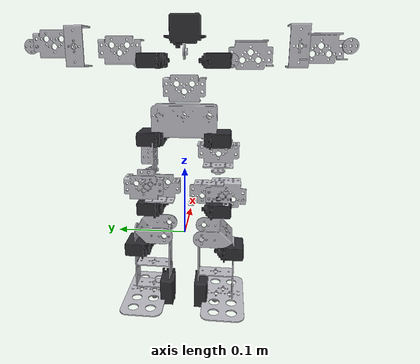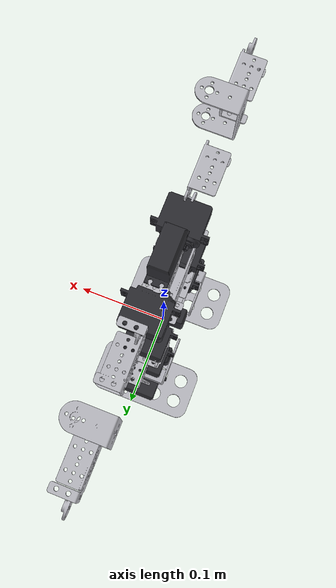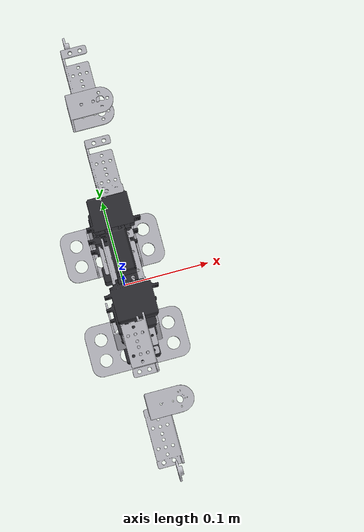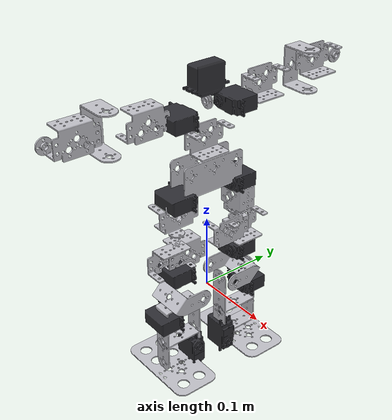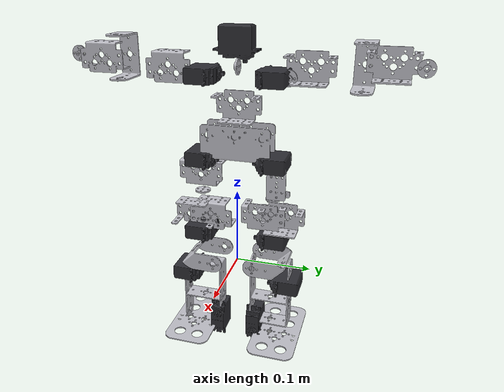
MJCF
<?xml version="1.0" ?>
<!-- TwoLeg v6 - accurate 15-DOF per user spec:
     head 1 + arm+hand 2x3 (shoulder_pitch, elbow, hand) + leg 2x4 (hip_yaw, hip_pitch, knee, ankle) -->
<mujoco model="twoleg">
  <compiler angle="radian" meshdir="assets" autolimits="true"/>
  <visual>
    <global offwidth="1024" offheight="1024"/>
    <headlight ambient="0.55 0.55 0.55" diffuse="0.6 0.6 0.6" specular="0.2 0.2 0.2"/>
  </visual>
  <default>
    <default class="twoleg">
      <joint damping="0.05" frictionloss="0.02" armature="0.002"/>
      <position kp="20" dampratio="1" forcerange="-3 3" ctrlrange="-1.6 1.6"/>
      <default class="visual"><geom type="mesh" contype="0" conaffinity="0" group="2"/></default>
      <default class="collision"><geom group="3"/></default>
    </default>
  </default>
  <asset>
    <mesh name="foot" file="foot_c.stl" scale="0.001 0.001 0.001"/>
    <mesh name="shortU" file="shortU_c.stl" scale="0.001 0.001 0.001"/>
    <mesh name="longU" file="longU_c.stl" scale="0.001 0.001 0.001"/>
    <mesh name="multi" file="multi_c.stl" scale="0.001 0.001 0.001"/>
    <mesh name="straight" file="straight_c.stl" scale="0.001 0.001 0.001"/>
    <mesh name="L_bracket" file="L_bracket_c.stl" scale="0.001 0.001 0.001"/>
    <mesh name="U_beam" file="U_beam_c.stl" scale="0.001 0.001 0.001"/>
    <mesh name="slantU" file="slantU_c.stl" scale="0.001 0.001 0.001"/>
    <mesh name="servo" file="servo_c.stl" scale="0.001 0.001 0.001"/>
    <mesh name="horn" file="horn_c.stl" scale="0.001 0.001 0.001"/>
    <mesh name="bearing" file="bearing_c.stl" scale="0.001 0.001 0.001"/>
    <material name="bracket" rgba="0.75 0.75 0.78 1"/>
    <material name="dark" rgba="0.18 0.18 0.2 1"/>
  </asset>
  <worldbody>
    <!-- ================= TORSO: U_beam waist + multi column + head ================= -->
    <body name="torso" pos="0 0 0.165" childclass="twoleg">
      <freejoint name="root_joint"/>
      <inertial pos="0 0 0.04" mass="0.40" diaginertia="0.0015 0.0015 0.0015"/>
      <!-- waist U_beam horizontal left-right -->
      <geom type="mesh" mesh="U_beam" material="bracket" class="visual" quat="0 0 0.707107 0.707107"/>
      <!-- central multi column -->
      <geom type="mesh" mesh="multi" material="bracket" class="visual" pos="0 0 0.045" quat="0.5 0.5 0.5 0.5"/>
      <!-- HEAD servo box on top: 1 DOF -->
      <body name="head" pos="0 0 0.10">
        <joint name="head_yaw" type="hinge" axis="0 0 1" range="-1.0 1.0"/>
        <inertial pos="0 0 0.02" mass="0.06" diaginertia="0.00005 0.00005 0.00005"/>
        <geom type="mesh" mesh="servo" material="dark" class="visual" pos="0 0 0.023" quat="0 1 0 0"/>
        <geom type="mesh" mesh="horn" material="bracket" class="visual" pos="0 0 -0.004" quat="0 1 0 0"/>
      </body>

      <!-- ===== LEFT ARM: 3 DOF (shoulder_pitch, elbow, hand) ===== -->
      <geom type="mesh" mesh="servo" material="dark" class="visual" pos="0 0.042 0.085" quat="0.5 0.5 0.5 -0.5"/>
      <body name="left_shoulder" pos="0 0.062 0.085">
        <joint name="left_shoulder_pitch" type="hinge" axis="0 1 0" range="-1.0 1.0"/>
        <joint name="left_shoulder_roll" type="hinge" axis="1 0 0" range="-1.6 1.6"/>
        <inertial pos="0 0.045 0.01" mass="0.06" diaginertia="0.0001 0.0001 0.0001"/>
        <geom type="mesh" mesh="horn" material="bracket" class="visual" quat="0.5 0.5 0.5 -0.5"/>
        <geom type="mesh" mesh="multi" material="bracket" class="visual" pos="0 0.025 0.01" quat="0.5 0.5 0.5 0.5"/>
        <body name="left_elbow" pos="0 0.065 0.018">
          <joint name="left_elbow" type="hinge" axis="1 0 0" range="-1.6 1.6"/>
          <inertial pos="0 0.04 0" mass="0.05" diaginertia="0.0001 0.0001 0.0001"/>
          <geom type="mesh" mesh="shortU" material="bracket" class="visual" quat="0.5 0.5 0.5 -0.5" pos="0 0.02 0"/>
          <geom type="mesh" mesh="multi" material="bracket" class="visual" pos="0 0.05 0" quat="0.5 0.5 0.5 0.5"/>
          <geom type="mesh" mesh="horn" material="bracket" class="visual" pos="0 0.085 0" quat="0.5 0.5 0.5 -0.5"/>
        </body>
      </body>

      <!-- ===== RIGHT ARM (mirror), 3 DOF ===== -->
      <geom type="mesh" mesh="servo" material="dark" class="visual" pos="0 -0.042 0.085" quat="-0.5 0.5 0.5 0.5"/>
      <body name="right_shoulder" pos="0 -0.062 0.085">
        <joint name="right_shoulder_pitch" type="hinge" axis="0 1 0" range="-1.0 1.0"/>
        <joint name="right_shoulder_roll" type="hinge" axis="1 0 0" range="-1.6 1.6"/>
        <inertial pos="0 -0.045 0.01" mass="0.06" diaginertia="0.0001 0.0001 0.0001"/>
        <geom type="mesh" mesh="horn" material="bracket" class="visual" quat="-0.5 0.5 0.5 0.5"/>
        <geom type="mesh" mesh="multi" material="bracket" class="visual" pos="0 -0.025 0.01" quat="-0.5 0.5 0.5 -0.5"/>
        <body name="right_elbow" pos="0 -0.065 0.018">
          <joint name="right_elbow" type="hinge" axis="1 0 0" range="-1.6 1.6"/>
          <inertial pos="0 -0.04 0" mass="0.05" diaginertia="0.0001 0.0001 0.0001"/>
          <geom type="mesh" mesh="shortU" material="bracket" class="visual" quat="-0.5 0.5 0.5 0.5" pos="0 -0.02 0"/>
          <geom type="mesh" mesh="multi" material="bracket" class="visual" pos="0 -0.05 0" quat="-0.5 0.5 0.5 -0.5"/>
          <geom type="mesh" mesh="horn" material="bracket" class="visual" pos="0 -0.085 0" quat="-0.5 0.5 0.5 0.5"/>
        </body>
      </body>

      <!-- ===== LEFT LEG: 4 DOF (hip_yaw, hip_pitch, knee, ankle) ===== -->
      <geom type="mesh" mesh="servo" material="dark" class="visual" pos="0 0.045 -0.02" quat="0.5 0.5 -0.5 0.5"/>
      <body name="left_hip_yaw" pos="0 0.048 -0.028">
        <joint name="left_hip_roll" type="hinge" axis="1 0 0" range="-0.8 0.8"/>
        <inertial pos="0 0 -0.02" mass="0.06" diaginertia="0.0001 0.0001 0.0001"/>
        <geom type="mesh" mesh="multi" material="bracket" class="visual" pos="0 0 -0.015" quat="0.5 -0.5 0.5 0.5"/>
        <!-- thigh: multi plate pair + pitch servo -->
        <body name="left_hip_pitch" pos="0 0 -0.04">
          <joint name="left_hip_pitch" type="hinge" axis="0 1 0" range="-1.3 1.3"/>
          <inertial pos="0 0 -0.035" mass="0.09" diaginertia="0.0002 0.0002 0.0002"/>
          <geom type="mesh" mesh="horn" material="bracket" class="visual" quat="0.5 0.5 0.5 0.5"/>
          <geom type="mesh" mesh="multi" material="bracket" class="visual" pos="0 0.012 -0.03" quat="0.5 0.5 0.5 0.5"/>
          <geom type="mesh" mesh="multi" material="bracket" class="visual" pos="0 -0.012 -0.03" quat="0.5 0.5 -0.5 -0.5"/>
          <geom type="mesh" mesh="servo" material="dark" class="visual" pos="0 0 -0.055" quat="0.5 0.5 -0.5 0.5"/>
          <!-- KNEE: slantU -->
          <body name="left_knee" pos="0 0 -0.066">
            <joint name="left_knee" type="hinge" axis="0 1 0" range="-1.6 0.15"/>
            <inertial pos="0 0 -0.035" mass="0.08" diaginertia="0.0002 0.0002 0.0002"/>
            <geom type="mesh" mesh="slantU" material="bracket" class="visual" pos="0 0 -0.028" quat="0.5 0.5 0.5 0.5"/>
            <geom type="mesh" mesh="servo" material="dark" class="visual" pos="0 0.02 -0.055" quat="0.5 0.5 -0.5 0.5"/>
            <geom type="mesh" mesh="longU" material="bracket" class="visual" pos="0 0 -0.062" quat="0.5 0.5 0.5 0.5"/>
            <!-- ANKLE: shortU + servo lying on foot -->
            <body name="left_ankle" pos="0 0 -0.098">
              <joint name="left_ankle" type="hinge" axis="1 0 0" range="-0.9 0.9"/>
              <inertial pos="0 0 -0.012" mass="0.06" diaginertia="0.0001 0.0001 0.0001"/>
              <geom type="mesh" mesh="shortU" material="bracket" class="visual" pos="0 0 -0.01" quat="0.5 0.5 0.5 0.5"/>
              <geom type="mesh" mesh="servo" material="dark" class="visual" pos="0 -0.022 -0.028" quat="0.5 0.5 0.5 0.5"/>
              <geom type="mesh" mesh="foot" material="bracket" class="visual" pos="0 0.012 -0.04"/>
              <geom type="box" size="0.062 0.032 0.003" pos="0 0.012 -0.043" rgba="0.2 0.2 0.2 1" group="3" name="left_foot_col"/>
              <site name="left_foot" pos="0 0 -0.045"/>
            </body>
          </body>
        </body>
      </body>

      <!-- ===== RIGHT LEG (mirror), 4 DOF ===== -->
      <geom type="mesh" mesh="servo" material="dark" class="visual" pos="0 -0.045 -0.02" quat="-0.5 0.5 -0.5 -0.5"/>
      <body name="right_hip_yaw" pos="0 -0.048 -0.028">
        <joint name="right_hip_roll" type="hinge" axis="1 0 0" range="-0.8 0.8"/>
        <inertial pos="0 0 -0.02" mass="0.06" diaginertia="0.0001 0.0001 0.0001"/>
        <geom type="mesh" mesh="multi" material="bracket" class="visual" pos="0 0 -0.015" quat="0.5 0.5 -0.5 -0.5"/>
        <body name="right_hip_pitch" pos="0 0 -0.04">
          <joint name="right_hip_pitch" type="hinge" axis="0 1 0" range="-1.3 1.3"/>
          <inertial pos="0 0 -0.035" mass="0.09" diaginertia="0.0002 0.0002 0.0002"/>
          <geom type="mesh" mesh="horn" material="bracket" class="visual" quat="0.5 -0.5 0.5 -0.5"/>
          <geom type="mesh" mesh="multi" material="bracket" class="visual" pos="0 -0.012 -0.03" quat="0.5 -0.5 0.5 -0.5"/>
          <geom type="mesh" mesh="multi" material="bracket" class="visual" pos="0 0.012 -0.03" quat="0.5 -0.5 -0.5 0.5"/>
          <geom type="mesh" mesh="servo" material="dark" class="visual" pos="0 0 -0.055" quat="0.5 -0.5 -0.5 -0.5"/>
          <body name="right_knee" pos="0 0 -0.066">
            <joint name="right_knee" type="hinge" axis="0 1 0" range="-1.6 0.15"/>
            <inertial pos="0 0 -0.035" mass="0.08" diaginertia="0.0002 0.0002 0.0002"/>
            <geom type="mesh" mesh="slantU" material="bracket" class="visual" pos="0 0 -0.028" quat="0.5 -0.5 0.5 -0.5"/>
            <geom type="mesh" mesh="servo" material="dark" class="visual" pos="0 -0.02 -0.055" quat="0.5 -0.5 -0.5 -0.5"/>
            <geom type="mesh" mesh="longU" material="bracket" class="visual" pos="0 0 -0.062" quat="0.5 -0.5 0.5 -0.5"/>
            <body name="right_ankle" pos="0 0 -0.098">
              <joint name="right_ankle" type="hinge" axis="1 0 0" range="-0.9 0.9"/>
              <inertial pos="0 0 -0.012" mass="0.06" diaginertia="0.0001 0.0001 0.0001"/>
              <geom type="mesh" mesh="shortU" material="bracket" class="visual" pos="0 0 -0.01" quat="0.5 -0.5 0.5 -0.5"/>
              <geom type="mesh" mesh="servo" material="dark" class="visual" pos="0 0.022 -0.028" quat="0.5 -0.5 0.5 -0.5"/>
              <geom type="mesh" mesh="foot" material="bracket" class="visual" pos="0 -0.012 -0.04"/>
              <geom type="box" size="0.062 0.032 0.003" pos="0 -0.012 -0.043" rgba="0.2 0.2 0.2 1" group="3" name="right_foot_col"/>
              <site name="right_foot" pos="0 0 -0.045"/>
            </body>
          </body>
        </body>
      </body>
    </body>
  </worldbody>
  <keyframe>
    <!-- STAND: facing camera (90deg yaw), arms raised ~30deg, hands neutral -->
    <key name="STAND" qpos="0 0 0.165 0.7071068 0 0 0.7071068 0 0 0.5 0.3 0 -0.5 -0.3 0 0 0 0 0 0 0 0"/>
  </keyframe>
  <actuator>
    <position name="head_yaw" joint="head_yaw"/>
    <position name="left_shoulder_pitch" joint="left_shoulder_pitch"/>
    <position name="left_elbow" joint="left_elbow"/>
    <position name="left_shoulder_roll" joint="left_shoulder_roll"/>
    <position name="right_shoulder_pitch" joint="right_shoulder_pitch"/>
    <position name="right_elbow" joint="right_elbow"/>
    <position name="right_shoulder_roll" joint="right_shoulder_roll"/>
    <position name="left_hip_roll" joint="left_hip_roll"/>
    <position name="left_hip_pitch" joint="left_hip_pitch"/>
    <position name="left_knee" joint="left_knee"/>
    <position name="left_ankle" joint="left_ankle"/>
    <position name="right_hip_roll" joint="right_hip_roll"/>
    <position name="right_hip_pitch" joint="right_hip_pitch"/>
    <position name="right_knee" joint="right_knee"/>
    <position name="right_ankle" joint="right_ankle"/>
  </actuator>
</mujoco>
